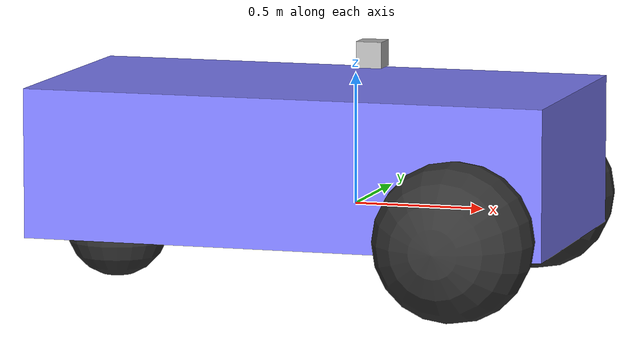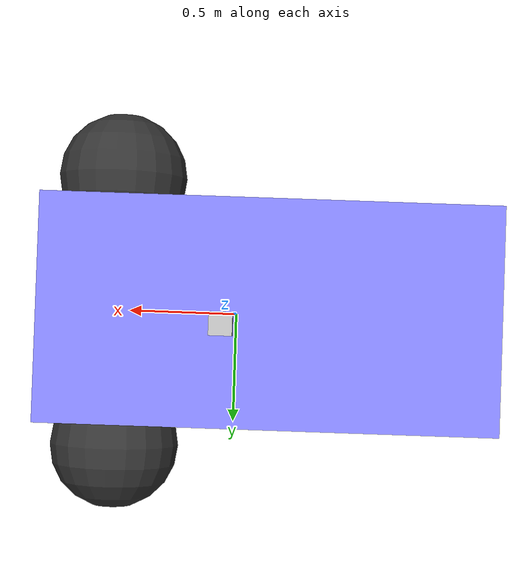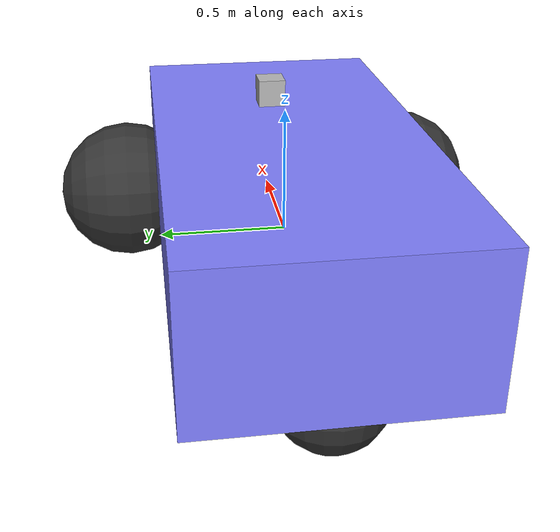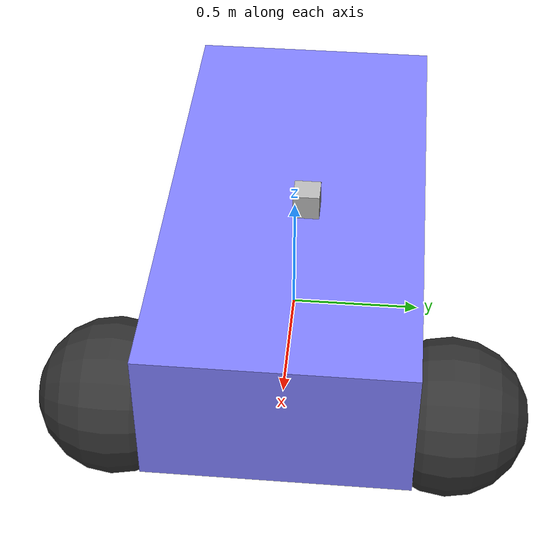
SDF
<?xml version="1.0"?>

<sdf version="1.6">

  <model name='vehicle_blue'>

    <frame name="odom">
      <pose>0 0 0 0 0 0</pose>
    </frame>

    <link name='base_link'>
      <pose relative_to="odom">-0.151427 -0 0.175 0 -0 0</pose>
      <inertial>
        <mass>1.14395</mass>
        <inertia>
          <ixx>0.126164</ixx>
          <ixy>0</ixy>
          <ixz>0</ixz>
          <iyy>0.416519</iyy>
          <iyz>0</iyz>
          <izz>0.481014</izz>
        </inertia>
      </inertial>
      <visual name='visual'>
        <geometry>
          <box>
            <size>2.01142 1 0.568726</size>
          </box>
        </geometry>
        <material>
          <ambient>0.5 0.5 1.0 1</ambient>
          <diffuse>0.5 0.5 1.0 1</diffuse>
          <specular>0.0 0.0 1.0 1</specular>
        </material>
      </visual>
      <collision name='collision'>
        <geometry>
          <box>
            <size>2.01142 1 0.568726</size>
          </box>
        </geometry>
      </collision>
    </link>

    <link name='left_wheel'>
      <pose>0.554283 0.625029 -0.025 -1.5707 0 0</pose>
      <inertial>
        <mass>2</mass>
        <inertia>
          <ixx>0.145833</ixx>
          <ixy>0</ixy>
          <ixz>0</ixz>
          <iyy>0.145833</iyy>
          <iyz>0</iyz>
          <izz>0.125</izz>
        </inertia>
      </inertial>
      <visual name='visual'>
        <geometry>
          <sphere>
            <radius>0.3</radius>
          </sphere>
        </geometry>
        <material>
          <ambient>0.2 0.2 0.2 1</ambient>
          <diffuse>0.2 0.2 0.2 1</diffuse>
          <specular>0.2 0.2 0.2 1</specular>
        </material>
      </visual>
      <collision name='collision'>
        <geometry>
          <sphere>
            <radius>0.3</radius>
          </sphere>
        </geometry>
        <surface>
          <friction>
            <ode>
              <mu>1</mu>
              <mu2>1</mu2>
              <slip1>0.035</slip1>
              <slip2>0</slip2>
              <fdir1>0 0 1</fdir1>
            </ode>
            <bullet>
              <friction>1</friction>
              <friction2>1</friction2>
              <rolling_friction>0.1</rolling_friction>
            </bullet>
          </friction>
        </surface>
      </collision>
    </link>

    <link name='right_wheel'>
      <pose>0.554282 -0.625029 -0.025 -1.5707 0 0</pose>
      <inertial>
        <mass>2</mass>
        <inertia>
          <ixx>0.145833</ixx>
          <ixy>0</ixy>
          <ixz>0</ixz>
          <iyy>0.145833</iyy>
          <iyz>0</iyz>
          <izz>0.125</izz>
        </inertia>
      </inertial>
      <visual name='visual'>
        <geometry>
          <sphere>
            <radius>0.3</radius>
          </sphere>
        </geometry>
        <material>
          <ambient>0.2 0.2 0.2 1</ambient>
          <diffuse>0.2 0.2 0.2 1</diffuse>
          <specular>0.2 0.2 0.2 1</specular>
        </material>
      </visual>
      <collision name='collision'>
        <geometry>
          <sphere>
            <radius>0.3</radius>
          </sphere>
        </geometry>
        <surface>
          <friction>
            <ode>
              <mu>1</mu>
              <mu2>1</mu2>
              <slip1>0.035</slip1>
              <slip2>0</slip2>
              <fdir1>0 0 1</fdir1>
            </ode>
            <bullet>
              <friction>1</friction>
              <friction2>1</friction2>
              <rolling_friction>0.1</rolling_friction>
            </bullet>
          </friction>
        </surface>
      </collision>
    </link>

    <link name='caster'>
      <pose>-0.957138 -0 -0.125 0 -0 0</pose>
      <inertial>
        <mass>1</mass>
        <inertia>
          <ixx>0.1</ixx>
          <ixy>0</ixy>
          <ixz>0</ixz>
          <iyy>0.1</iyy>
          <iyz>0</iyz>
          <izz>0.1</izz>
        </inertia>
      </inertial>
      <visual name='visual'>
        <geometry>
          <sphere>
            <radius>0.2</radius>
          </sphere>
        </geometry>
        <material>
          <ambient>0.2 0.2 0.2 1</ambient>
          <diffuse>0.2 0.2 0.2 1</diffuse>
          <specular>0.2 0.2 0.2 1</specular>
        </material>
      </visual>
      <collision name='collision'>
        <geometry>
          <sphere>
            <radius>0.2</radius>
          </sphere>
        </geometry>
      </collision>
    </link>

    <link name="lidar">
      <pose>0.05 0.05 0.568726 0 0 0</pose>
      <inertial>
        <mass>0.1</mass>
        <inertia>
          <ixx>0.000166667</ixx>
          <iyy>0.000166667</iyy>
          <izz>0.000166667</izz>
        </inertia>
      </inertial>
      <collision name="collision">
        <geometry>
          <box>
            <size>0.1 0.1 0.1</size>
          </box>
        </geometry>
      </collision>
      <visual name="visual">
        <geometry>
          <box>
            <size>0.1 0.1 0.1</size>
          </box>
        </geometry>
      </visual>

      <sensor name='gpu_lidar' type='gpu_lidar'>
        <topic>lidar</topic>
        <update_rate>10</update_rate>
        <lidar>
          <scan>
            <horizontal>
              <samples>640</samples>
              <resolution>1</resolution>
              <min_angle>-3.14159</min_angle>
              <max_angle>3.14159</max_angle>
            </horizontal>
          </scan>
          <range>
            <min>0.08</min>
            <max>10.0</max>
            <resolution>0.01</resolution>
          </range>
        </lidar>
        <alwaysOn>1</alwaysOn>
        <visualize>true</visualize>
      </sensor>
    </link>

    <joint name='left_wheel_joint' type='revolute'>
      <parent>base_link</parent>
      <child>left_wheel</child>
      <axis>
        <xyz>0 0 1</xyz>
        <limit>
          <lower>-1.79769e+308</lower>
          <upper>1.79769e+308</upper>
        </limit>
      </axis>
    </joint>

    <joint name='right_wheel_joint' type='revolute'>
      <parent>base_link</parent>
      <child>right_wheel</child>
      <axis>
        <xyz>0 0 1</xyz>
        <limit>
          <lower>-1.79769e+308</lower>
          <upper>1.79769e+308</upper>
        </limit>
      </axis>
    </joint>

    <joint name='caster_wheel' type='ball'>
      <parent>base_link</parent>
      <child>caster</child>
    </joint>

    <joint name="lidar_joint" type="fixed">
      <parent>base_link</parent>
      <child>lidar</child>
      <axis>
        <xyz>0 0 1</xyz>
        <use_parent_model_frame>true</use_parent_model_frame>
      </axis>
    </joint>

    <plugin
      filename="gz-sim-diff-drive-system"
      name="gz::sim::systems::DiffDrive">
      <left_joint>left_wheel_joint</left_joint>
      <right_joint>right_wheel_joint</right_joint>
      <wheel_separation>1.25</wheel_separation>
      <wheel_radius>0.3</wheel_radius>
      <odom_publish_frequency>1</odom_publish_frequency>
      <left_joint>left_wheel_joint</left_joint>
      <right_joint>right_wheel_joint</right_joint>

      <max_linear_acceleration>1</max_linear_acceleration>
      <min_linear_acceleration>-1</min_linear_acceleration>
      <max_angular_acceleration>2</max_angular_acceleration>
      <min_angular_acceleration>-2</min_angular_acceleration>
      <max_linear_velocity>0.5</max_linear_velocity>
      <min_linear_velocity>-0.5</min_linear_velocity>
      <max_angular_velocity>1</max_angular_velocity>
      <min_angular_velocity>-1</min_angular_velocity>
    </plugin>
  </model>
</sdf>
